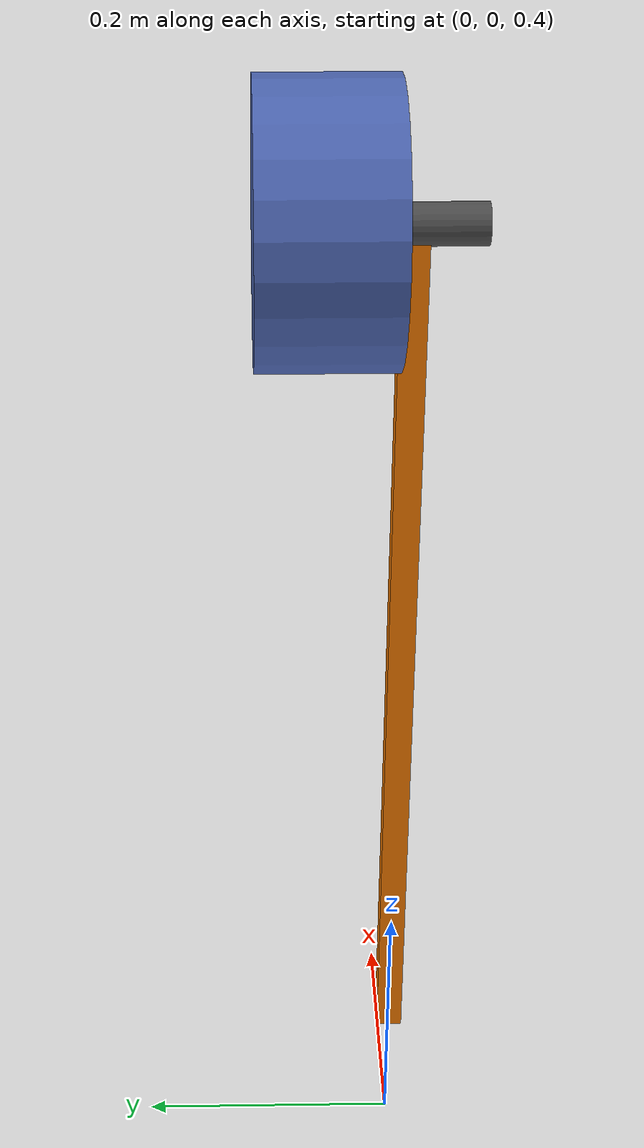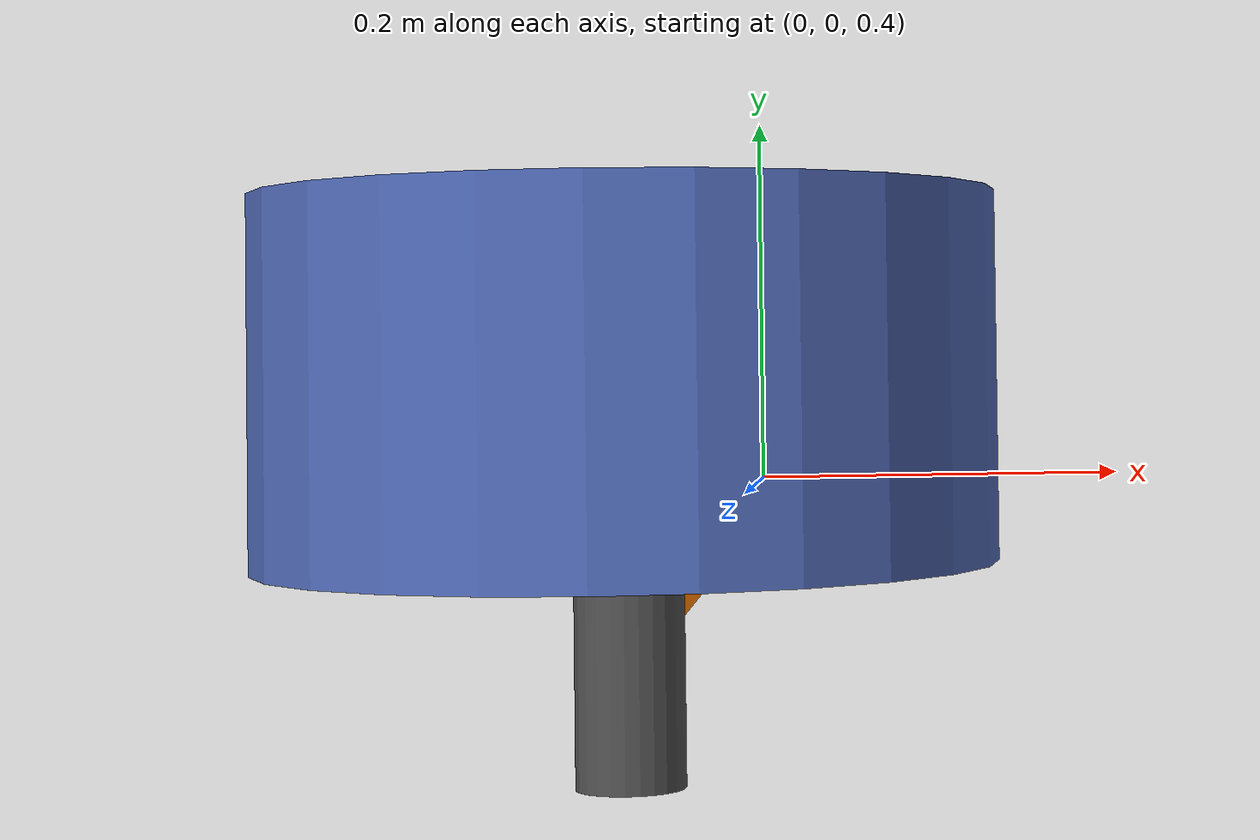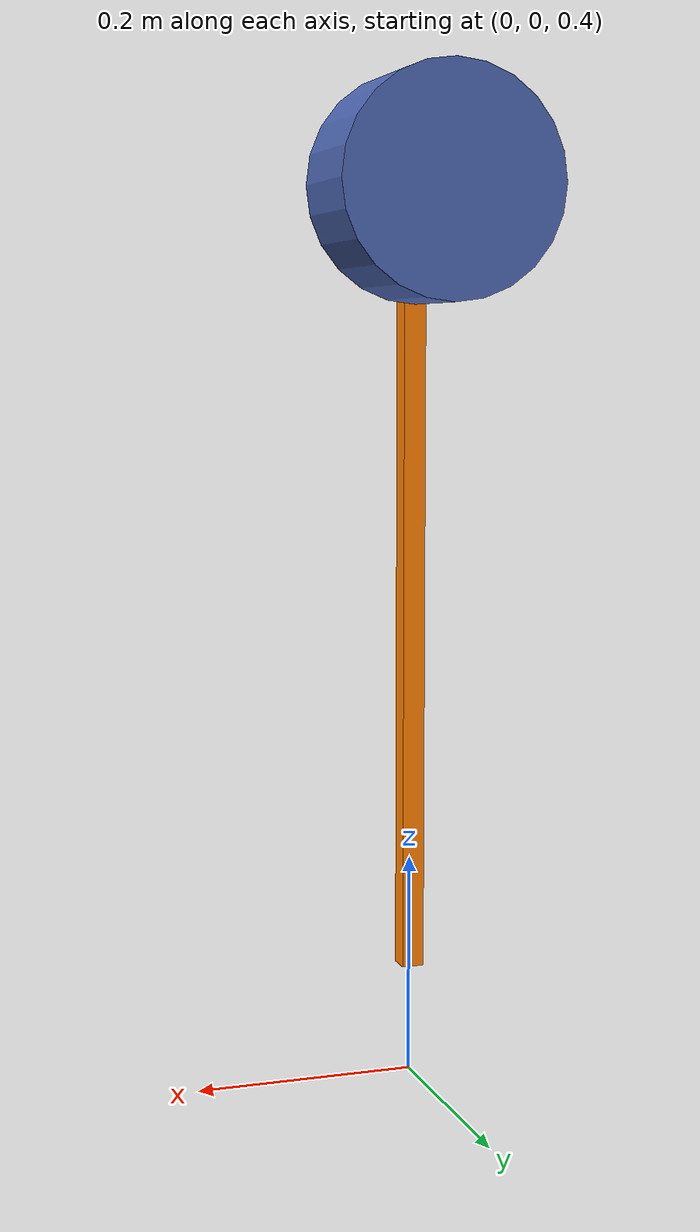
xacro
<?xml version="1.0"?>
<robot xmlns:xacro="http://www.ros.org/wiki/xacro" name="pendulum">

  <!-- ==================== Properties ==================== -->
  <xacro:property name="bar_length" value="0.7"/>
  <xacro:property name="bar_width"  value="0.02"/>
  <xacro:property name="bar_depth"  value="0.02"/>
  <xacro:property name="bar_mass"   value="0.313"/>
  <xacro:property name="pivot_height" value="1.2"/>

  <xacro:property name="ixx" value="${(1.0/12.0)*bar_mass*(bar_depth**2 + bar_length**2)}"/>
  <xacro:property name="iyy" value="${(1.0/12.0)*bar_mass*(bar_width**2 + bar_length**2)}"/>
  <xacro:property name="izz" value="${(1.0/12.0)*bar_mass*(bar_width**2 + bar_depth**2)}"/>

  <!-- ==================== Links ==================== -->

  <link name="world"/>

  <link name="motor_body">
    <visual>
      <origin xyz="0 0 0" rpy="${pi/2} 0 0"/>
      <geometry>
        <cylinder radius="0.1" length="0.1"/>
      </geometry>
      <material name="steel_blue">
        <color rgba="0.3 0.4 0.7 1.0"/>
      </material>
    </visual>
    <collision>
      <origin xyz="0 0 0" rpy="${pi/2} 0 0"/>
      <geometry>
        <cylinder radius="0.1" length="0.1"/>
      </geometry>
    </collision>
    <inertial>
      <mass value="0.01"/>
      <inertia ixx="0.00001" ixy="0" ixz="0" iyy="0.00001" iyz="0" izz="0.00001"/>
    </inertial>
  </link>
  <joint name="motor_body_joint" type="fixed">
    <parent link="world"/>
    <child link="motor_body"/>
    <origin xyz="0 ${bar_depth/2 + 0.04 + 0.01} ${pivot_height}" rpy="0 0 0"/>
  </joint>

  <link name="motor_shaft">
    <visual>
      <origin xyz="0 ${-(bar_depth/2 + 0.04 + 0.01)/2} 0" rpy="${pi/2} 0 0"/>
      <geometry>
        <cylinder radius="0.015" length="${bar_depth/2 + 0.04 + 0.01}"/>
      </geometry>
      <material name="dark_grey">
        <color rgba="0.3 0.3 0.3 1.0"/>
      </material>
    </visual>
  </link>
  <joint name="shaft_joint" type="fixed">
    <parent link="pendulum_link"/>
    <child link="motor_shaft"/>
    <origin xyz="0 ${bar_depth/2} 0" rpy="0 0 0"/>
  </joint>

  <link name="pendulum_link">
    <visual>
      <origin xyz="0 0 ${-bar_length/2.0}" rpy="0 0 0"/>
      <geometry>
        <box size="${bar_width} ${bar_depth} ${bar_length}"/>
      </geometry>
      <material name="orange">
        <color rgba="1.0 0.5 0.0 1.0"/>
      </material>
    </visual>
    <collision>
      <origin xyz="0 0 ${-bar_length/2.0}" rpy="0 0 0"/>
      <geometry>
        <box size="${bar_width} ${bar_depth} ${bar_length}"/>
      </geometry>
    </collision>
    <inertial>
      <origin xyz="0 0 ${-bar_length/2.0}" rpy="0 0 0"/>
      <mass value="${bar_mass}"/>
      <inertia ixx="${ixx}" ixy="0" ixz="0"
               iyy="${iyy}" iyz="0"
               izz="${izz}"/>
    </inertial>
  </link>

  <!-- ==================== Joint ==================== -->
  <joint name="pendulum_joint" type="revolute">
    <parent link="world"/>
    <child link="pendulum_link"/>
    <origin xyz="0 0 ${pivot_height}" rpy="0 0 0"/>
    <axis xyz="0 1 0"/>
    <limit lower="0.0" upper="${2*pi}" effort="20.0" velocity="16.02"/>
    <dynamics damping="0.16" friction="1.6"/>
  </joint>

  <!-- ==================== ros2_control — EtherCAT hardware ==================== -->
  <xacro:arg name="slave_config" default=""/>
  <!-- mode_of_operation: 10 = CST (default), 5 = PVT. Must match the SDO in slave_config. -->
  <xacro:arg name="mode_of_operation" default="10"/>
  <!-- pvt_mode: when true, expose position/velocity/kp/kd command interfaces in addition to effort
       so a multi-interface controller can stream the full PVT payload mapped by RxPDO 0x1601. -->
  <xacro:arg name="pvt_mode" default="false"/>

  <ros2_control name="iCubX6EthercatSystem" type="system">
    <hardware>
      <plugin>ethercat_driver/EthercatDriver</plugin>
      <param name="master_id">0</param>
      <param name="control_frequency">1000</param>
    </hardware>
    <joint name="pendulum_joint">
      <command_interface name="effort">
        <param name="min">-20.0</param>
        <param name="max">20.0</param>
      </command_interface>
      <xacro:if value="$(arg pvt_mode)">
        <command_interface name="position"/>
        <command_interface name="velocity"/>
        <command_interface name="kp"/>
        <command_interface name="kd"/>
      </xacro:if>
      <state_interface name="position"/>
      <state_interface name="velocity"/>
      <state_interface name="effort"/>
      <state_interface name="motor_temperature"/>
      <state_interface name="drive_temperature"/>
      <state_interface name="bus_voltage"/>
      <xacro:if value="$(arg pvt_mode)">
        <state_interface name="error_code"/>
      </xacro:if>
      <ec_module name="icub_x6">
        <plugin>ethercat_generic_plugins/EcCiA402Drive</plugin>
        <param name="alias">0</param>
        <param name="position">0</param>
        <param name="mode_of_operation">$(arg mode_of_operation)</param>
        <param name="slave_config">$(arg slave_config)</param>
      </ec_module>
    </joint>
  </ros2_control>

</robot>
